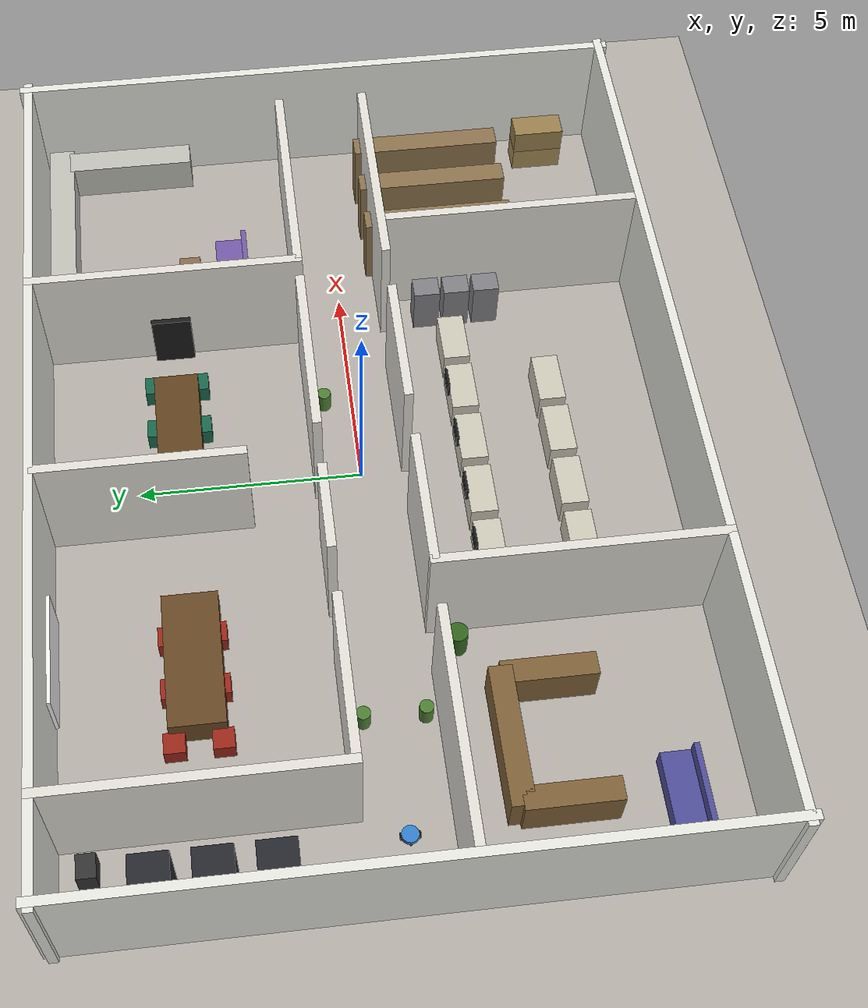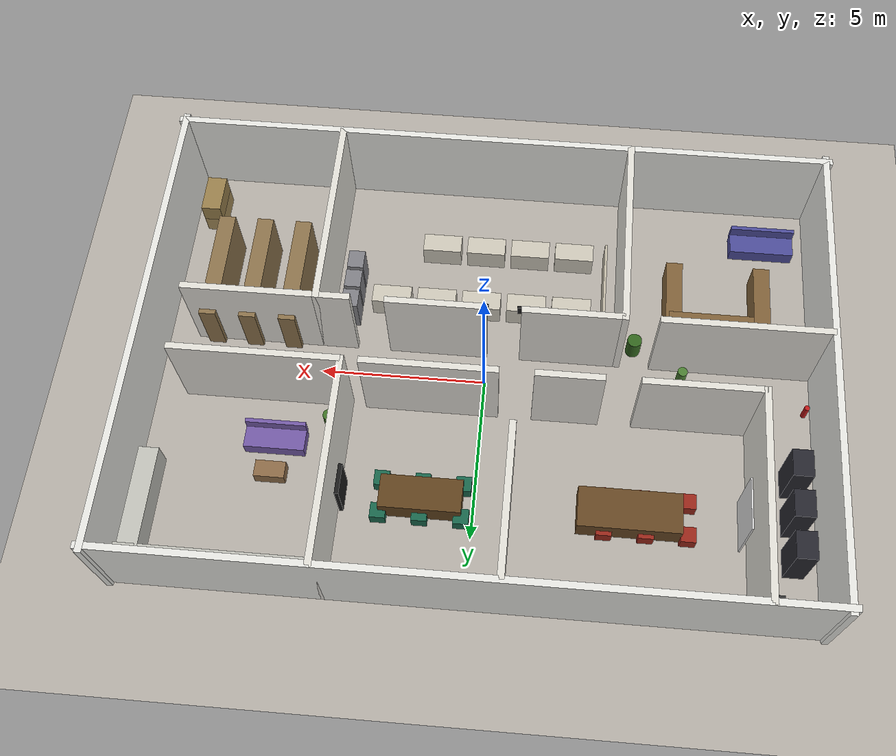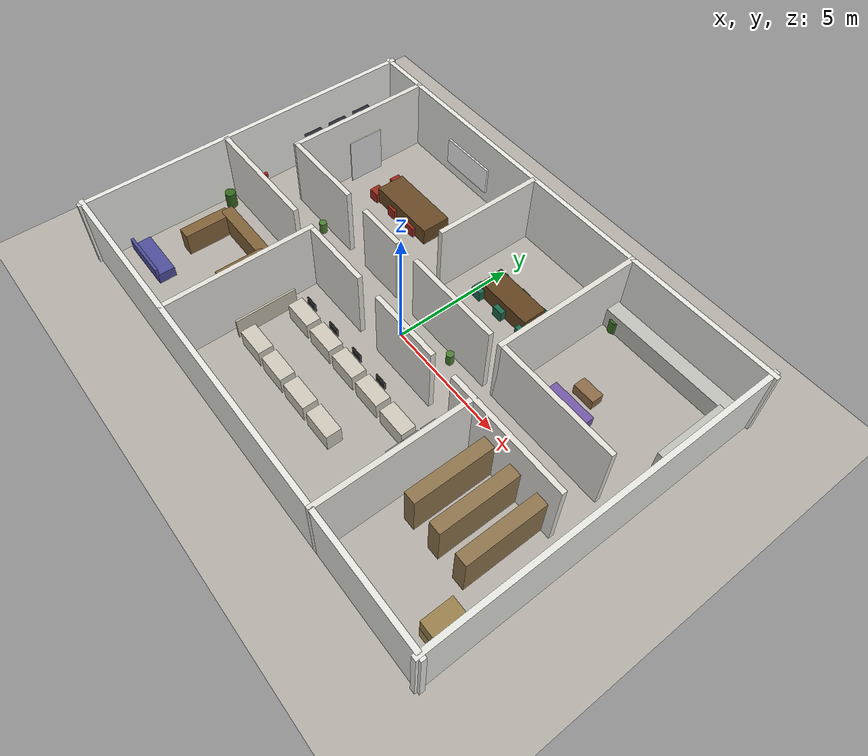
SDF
<?xml version="1.0" ?>
<sdf version="1.9">
  <world name="office">

    <physics name="1ms" type="ignored">
      <max_step_size>0.001</max_step_size>
      <real_time_factor>1.0</real_time_factor>
    </physics>

    <plugin filename="gz-sim-physics-system"           name="gz::sim::systems::Physics"/>
    <plugin filename="gz-sim-sensors-system"           name="gz::sim::systems::Sensors">
      <render_engine>ogre2</render_engine>
    </plugin>
    <plugin filename="gz-sim-user-commands-system"     name="gz::sim::systems::UserCommands"/>
    <plugin filename="gz-sim-scene-broadcaster-system" name="gz::sim::systems::SceneBroadcaster"/>

    <scene>
      <ambient>0.8 0.8 0.8 1.0</ambient>
      <background>0.2 0.2 0.25 1.0</background>
      <shadows>false</shadows>
    </scene>

    <!-- 조명: 복도 + 각 구역 -->
    <light name="sun" type="directional">
      <pose>0 0 10 0.3 0 0.5</pose>
      <diffuse>0.9 0.9 0.85 1</diffuse><specular>0.1 0.1 0.1 1</specular>
      <direction>-0.4 0.2 -1</direction><cast_shadows>false</cast_shadows>
    </light>
    <light name="l_corridor_w" type="point"><pose>-6.0  0.0 3.2 0 0 0</pose><diffuse>1.0 1.0 0.9 1</diffuse><specular>0.1 0.1 0.1 1</specular><attenuation><range>7</range><linear>0.12</linear></attenuation><cast_shadows>false</cast_shadows></light>
    <light name="l_corridor_e" type="point"><pose> 2.0  0.0 3.2 0 0 0</pose><diffuse>1.0 1.0 0.9 1</diffuse><specular>0.1 0.1 0.1 1</specular><attenuation><range>7</range><linear>0.12</linear></attenuation><cast_shadows>false</cast_shadows></light>
    <light name="l_lobby"      type="point"><pose>-7.5 -3.5 3.2 0 0 0</pose><diffuse>0.9 0.9 0.85 1</diffuse><specular>0.1 0.1 0.1 1</specular><attenuation><range>6</range><linear>0.15</linear></attenuation><cast_shadows>false</cast_shadows></light>
    <light name="l_open_ws"    type="point"><pose> 1.5 -3.5 3.2 0 0 0</pose><diffuse>0.9 0.9 0.85 1</diffuse><specular>0.1 0.1 0.1 1</specular><attenuation><range>8</range><linear>0.1</linear></attenuation><cast_shadows>false</cast_shadows></light>
    <light name="l_conf_a"     type="point"><pose>-4.5  4.0 3.2 0 0 0</pose><diffuse>0.9 0.9 0.85 1</diffuse><specular>0.1 0.1 0.1 1</specular><attenuation><range>5</range><linear>0.15</linear></attenuation><cast_shadows>false</cast_shadows></light>
    <light name="l_conf_b"     type="point"><pose> 1.5  4.0 3.2 0 0 0</pose><diffuse>0.9 0.9 0.85 1</diffuse><specular>0.1 0.1 0.1 1</specular><attenuation><range>5</range><linear>0.15</linear></attenuation><cast_shadows>false</cast_shadows></light>
    <light name="l_break"      type="point"><pose> 7.5  4.0 3.2 0 0 0</pose><diffuse>1.0 0.95 0.85 1</diffuse><specular>0.1 0.1 0.1 1</specular><attenuation><range>5</range><linear>0.15</linear></attenuation><cast_shadows>false</cast_shadows></light>

    <!-- ═══════════════════════════════════════
         바닥
         ═══════════════════════════════════════ -->
    <model name="floor"><static>true</static><link name="link">
      <collision name="col"><geometry><plane><normal>0 0 1</normal><size>200 200</size></plane></geometry></collision>
      <visual name="vis"><geometry><plane><normal>0 0 1</normal><size>200 200</size></plane></geometry>
        <material><ambient>0.70 0.68 0.65 1</ambient><diffuse>0.70 0.68 0.65 1</diffuse></material>
      </visual>
    </link></model>

    <!-- ═══════════════════════════════════════
         외벽 (20m × 14m, 두께 0.2m, 높이 3m)
         ═══════════════════════════════════════ -->
    <model name="wall_N"><static>true</static><pose>0  7 1.5 0 0 0</pose><link name="link">
      <collision name="c"><geometry><box><size>20.4 0.2 3.0</size></box></geometry></collision>
      <visual name="v"><geometry><box><size>20.4 0.2 3.0</size></box></geometry>
        <material><ambient>0.90 0.90 0.88 1</ambient><diffuse>0.90 0.90 0.88 1</diffuse></material></visual>
    </link></model>
    <model name="wall_S"><static>true</static><pose>0 -7 1.5 0 0 0</pose><link name="link">
      <collision name="c"><geometry><box><size>20.4 0.2 3.0</size></box></geometry></collision>
      <visual name="v"><geometry><box><size>20.4 0.2 3.0</size></box></geometry>
        <material><ambient>0.90 0.90 0.88 1</ambient><diffuse>0.90 0.90 0.88 1</diffuse></material></visual>
    </link></model>
    <model name="wall_W"><static>true</static><pose>-10 0 1.5 0 0 0</pose><link name="link">
      <collision name="c"><geometry><box><size>0.2 14.4 3.0</size></box></geometry></collision>
      <visual name="v"><geometry><box><size>0.2 14.4 3.0</size></box></geometry>
        <material><ambient>0.90 0.90 0.88 1</ambient><diffuse>0.90 0.90 0.88 1</diffuse></material></visual>
    </link></model>
    <model name="wall_E"><static>true</static><pose>10 0 1.5 0 0 0</pose><link name="link">
      <collision name="c"><geometry><box><size>0.2 14.4 3.0</size></box></geometry></collision>
      <visual name="v"><geometry><box><size>0.2 14.4 3.0</size></box></geometry>
        <material><ambient>0.90 0.90 0.88 1</ambient><diffuse>0.90 0.90 0.88 1</diffuse></material></visual>
    </link></model>

    <!-- ═══════════════════════════════════════
         내부 벽: 복도 (Y=+1 ~ Y=-1, 폭 2m)
         북쪽 복도벽 Y=+1, 남쪽 복도벽 Y=-1
         ═══════════════════════════════════════ -->

    <!-- 북쪽 복도벽 (문 3개: x=-8 [서버룸], x=-2 [회의A], x=4 [회의B]) -->
    <model name="ncw_seg1"><static>true</static><pose>-6.25 1.0 1.5 0 0 0</pose><link name="link">
      <collision name="c"><geometry><box><size>3.5 0.2 3.0</size></box></geometry></collision>
      <visual name="v"><geometry><box><size>3.5 0.2 3.0</size></box></geometry>
        <material><ambient>0.88 0.87 0.84 1</ambient><diffuse>0.88 0.87 0.84 1</diffuse></material></visual>
    </link></model>
    <model name="ncw_seg2"><static>true</static><pose>-2.5 1.0 1.5 0 0 0</pose><link name="link">
      <collision name="c"><geometry><box><size>2.0 0.2 3.0</size></box></geometry></collision>
      <visual name="v"><geometry><box><size>2.0 0.2 3.0</size></box></geometry>
        <material><ambient>0.88 0.87 0.84 1</ambient><diffuse>0.88 0.87 0.84 1</diffuse></material></visual>
    </link></model>
    <model name="ncw_seg3"><static>true</static><pose> 1.5 1.0 1.5 0 0 0</pose><link name="link">
      <collision name="c"><geometry><box><size>4.0 0.2 3.0</size></box></geometry></collision>
      <visual name="v"><geometry><box><size>4.0 0.2 3.0</size></box></geometry>
        <material><ambient>0.88 0.87 0.84 1</ambient><diffuse>0.88 0.87 0.84 1</diffuse></material></visual>
    </link></model>
    <model name="ncw_seg4"><static>true</static><pose> 6.5 1.0 1.5 0 0 0</pose><link name="link">
      <collision name="c"><geometry><box><size>5.0 0.2 3.0</size></box></geometry></collision>
      <visual name="v"><geometry><box><size>5.0 0.2 3.0</size></box></geometry>
        <material><ambient>0.88 0.87 0.84 1</ambient><diffuse>0.88 0.87 0.84 1</diffuse></material></visual>
    </link></model>

    <!-- 남쪽 복도벽 (문 2개: x=-3.5 [로비→복도], x=3.5 [오픈→복도]) -->
    <model name="scw_seg1"><static>true</static><pose>-7.5 -1.0 1.5 0 0 0</pose><link name="link">
      <collision name="c"><geometry><box><size>5.0 0.2 3.0</size></box></geometry></collision>
      <visual name="v"><geometry><box><size>5.0 0.2 3.0</size></box></geometry>
        <material><ambient>0.88 0.87 0.84 1</ambient><diffuse>0.88 0.87 0.84 1</diffuse></material></visual>
    </link></model>
    <model name="scw_seg2"><static>true</static><pose>-2.5 -1.0 1.5 0 0 0</pose><link name="link">
      <collision name="c"><geometry><box><size>3.0 0.2 3.0</size></box></geometry></collision>
      <visual name="v"><geometry><box><size>3.0 0.2 3.0</size></box></geometry>
        <material><ambient>0.88 0.87 0.84 1</ambient><diffuse>0.88 0.87 0.84 1</diffuse></material></visual>
    </link></model>
    <model name="scw_seg3"><static>true</static><pose> 1.5 -1.0 1.5 0 0 0</pose><link name="link">
      <collision name="c"><geometry><box><size>3.0 0.2 3.0</size></box></geometry></collision>
      <visual name="v"><geometry><box><size>3.0 0.2 3.0</size></box></geometry>
        <material><ambient>0.88 0.87 0.84 1</ambient><diffuse>0.88 0.87 0.84 1</diffuse></material></visual>
    </link></model>
    <model name="scw_seg4"><static>true</static><pose> 6.5 -1.0 1.5 0 0 0</pose><link name="link">
      <collision name="c"><geometry><box><size>5.0 0.2 3.0</size></box></geometry></collision>
      <visual name="v"><geometry><box><size>5.0 0.2 3.0</size></box></geometry>
        <material><ambient>0.88 0.87 0.84 1</ambient><diffuse>0.88 0.87 0.84 1</diffuse></material></visual>
    </link></model>

    <!-- 북쪽 방 구분벽 -->
    <!-- 서버룸 | 회의실A 구분: x=-8 -->
    <model name="ndiv_1"><static>true</static><pose>-8.0 4.0 1.5 0 0 0</pose><link name="link">
      <collision name="c"><geometry><box><size>0.2 6.2 3.0</size></box></geometry></collision>
      <visual name="v"><geometry><box><size>0.2 6.2 3.0</size></box></geometry>
        <material><ambient>0.88 0.87 0.84 1</ambient><diffuse>0.88 0.87 0.84 1</diffuse></material></visual>
    </link></model>
    <!-- 회의실A | 회의실B 구분: x=-1 -->
    <model name="ndiv_2a"><static>true</static><pose>-1.0 4.75 1.5 0 0 0</pose><link name="link">
      <collision name="c"><geometry><box><size>0.2 4.5 3.0</size></box></geometry></collision>
      <visual name="v"><geometry><box><size>0.2 4.5 3.0</size></box></geometry>
        <material><ambient>0.88 0.87 0.84 1</ambient><diffuse>0.88 0.87 0.84 1</diffuse></material></visual>
    </link></model>
    <!-- 회의실B | 휴게실 구분: x=4 -->
    <model name="ndiv_3"><static>true</static><pose>4.0 4.0 1.5 0 0 0</pose><link name="link">
      <collision name="c"><geometry><box><size>0.2 6.2 3.0</size></box></geometry></collision>
      <visual name="v"><geometry><box><size>0.2 6.2 3.0</size></box></geometry>
        <material><ambient>0.88 0.87 0.84 1</ambient><diffuse>0.88 0.87 0.84 1</diffuse></material></visual>
    </link></model>

    <!-- 남쪽 방 구분벽 -->
    <!-- 로비 | 오픈 구분: x=-4 -->
    <model name="sdiv_1"><static>true</static><pose>-4.0 -4.0 1.5 0 0 0</pose><link name="link">
      <collision name="c"><geometry><box><size>0.2 6.2 3.0</size></box></geometry></collision>
      <visual name="v"><geometry><box><size>0.2 6.2 3.0</size></box></geometry>
        <material><ambient>0.88 0.87 0.84 1</ambient><diffuse>0.88 0.87 0.84 1</diffuse></material></visual>
    </link></model>
    <!-- 오픈 | 창고 구분: x=5 -->
    <model name="sdiv_2"><static>true</static><pose>5.0 -4.0 1.5 0 0 0</pose><link name="link">
      <collision name="c"><geometry><box><size>0.2 6.2 3.0</size></box></geometry></collision>
      <visual name="v"><geometry><box><size>0.2 6.2 3.0</size></box></geometry>
        <material><ambient>0.88 0.87 0.84 1</ambient><diffuse>0.88 0.87 0.84 1</diffuse></material></visual>
    </link></model>

    <!-- ═══════════════════════════════════════
         [서버룸] x: -10~-8, y: 1~7
         ═══════════════════════════════════════ -->
    <!-- 서버랙 3개 (높이 1.8m → 라이다에 잘 보임) -->
    <model name="srv_rack1"><static>true</static><pose>-9.2 5.0 0.9 0 0 0</pose><link name="link">
      <collision name="c"><geometry><box><size>0.6 0.8 1.8</size></box></geometry></collision>
      <visual name="v"><geometry><box><size>0.6 0.8 1.8</size></box></geometry>
        <material><ambient>0.15 0.15 0.18 1</ambient><diffuse>0.15 0.15 0.18 1</diffuse></material></visual>
    </link></model>
    <model name="srv_rack2"><static>true</static><pose>-9.2 3.8 0.9 0 0 0</pose><link name="link">
      <collision name="c"><geometry><box><size>0.6 0.8 1.8</size></box></geometry></collision>
      <visual name="v"><geometry><box><size>0.6 0.8 1.8</size></box></geometry>
        <material><ambient>0.15 0.15 0.18 1</ambient><diffuse>0.15 0.15 0.18 1</diffuse></material></visual>
    </link></model>
    <model name="srv_rack3"><static>true</static><pose>-9.2 2.6 0.9 0 0 0</pose><link name="link">
      <collision name="c"><geometry><box><size>0.6 0.8 1.8</size></box></geometry></collision>
      <visual name="v"><geometry><box><size>0.6 0.8 1.8</size></box></geometry>
        <material><ambient>0.15 0.15 0.18 1</ambient><diffuse>0.15 0.15 0.18 1</diffuse></material></visual>
    </link></model>
    <!-- UPS 박스 -->
    <model name="srv_ups"><static>true</static><pose>-8.6 6.3 0.3 0 0 0</pose><link name="link">
      <collision name="c"><geometry><box><size>0.5 0.4 0.6</size></box></geometry></collision>
      <visual name="v"><geometry><box><size>0.5 0.4 0.6</size></box></geometry>
        <material><ambient>0.2 0.2 0.2 1</ambient><diffuse>0.2 0.2 0.2 1</diffuse></material></visual>
    </link></model>

    <!-- ═══════════════════════════════════════
         [회의실A] x: -8~-1, y: 1~7
         ═══════════════════════════════════════ -->
    <!-- 대형 회의 테이블 (3m × 1.2m) -->
    <model name="conf_a_table"><static>true</static><pose>-4.5 4.0 0.38 0 0 0</pose><link name="link">
      <collision name="c"><geometry><box><size>3.0 1.2 0.75</size></box></geometry></collision>
      <visual name="v"><geometry><box><size>3.0 1.2 0.75</size></box></geometry>
        <material><ambient>0.40 0.28 0.14 1</ambient><diffuse>0.40 0.28 0.14 1</diffuse></material></visual>
    </link></model>
    <!-- 테이블 다리 4개 (라이다 높이에서 보임) -->
    <model name="conf_a_leg_fl"><static>true</static><pose>-5.8 4.5 0.35 0 0 0</pose><link name="link">
      <collision name="c"><geometry><cylinder><radius>0.04</radius><length>0.70</length></cylinder></geometry></collision>
      <visual name="v"><geometry><cylinder><radius>0.04</radius><length>0.70</length></cylinder></geometry>
        <material><ambient>0.25 0.18 0.08 1</ambient><diffuse>0.25 0.18 0.08 1</diffuse></material></visual>
    </link></model>
    <model name="conf_a_leg_fr"><static>true</static><pose>-5.8 3.5 0.35 0 0 0</pose><link name="link">
      <collision name="c"><geometry><cylinder><radius>0.04</radius><length>0.70</length></cylinder></geometry></collision>
      <visual name="v"><geometry><cylinder><radius>0.04</radius><length>0.70</length></cylinder></geometry>
        <material><ambient>0.25 0.18 0.08 1</ambient><diffuse>0.25 0.18 0.08 1</diffuse></material></visual>
    </link></model>
    <model name="conf_a_leg_rl"><static>true</static><pose>-3.2 4.5 0.35 0 0 0</pose><link name="link">
      <collision name="c"><geometry><cylinder><radius>0.04</radius><length>0.70</length></cylinder></geometry></collision>
      <visual name="v"><geometry><cylinder><radius>0.04</radius><length>0.70</length></cylinder></geometry>
        <material><ambient>0.25 0.18 0.08 1</ambient><diffuse>0.25 0.18 0.08 1</diffuse></material></visual>
    </link></model>
    <model name="conf_a_leg_rr"><static>true</static><pose>-3.2 3.5 0.35 0 0 0</pose><link name="link">
      <collision name="c"><geometry><cylinder><radius>0.04</radius><length>0.70</length></cylinder></geometry></collision>
      <visual name="v"><geometry><cylinder><radius>0.04</radius><length>0.70</length></cylinder></geometry>
        <material><ambient>0.25 0.18 0.08 1</ambient><diffuse>0.25 0.18 0.08 1</diffuse></material></visual>
    </link></model>
    <!-- 의자 6개 (좌석판만: 0.45×0.45×0.45) -->
    <model name="conf_a_chair1"><static>true</static><pose>-6.2 4.5 0.22 0 0 0</pose><link name="link"><collision name="c"><geometry><box><size>0.45 0.45 0.45</size></box></geometry></collision><visual name="v"><geometry><box><size>0.45 0.45 0.45</size></box></geometry><material><ambient>0.6 0.15 0.1 1</ambient><diffuse>0.6 0.15 0.1 1</diffuse></material></visual></link></model>
    <model name="conf_a_chair2"><static>true</static><pose>-5.0 4.5 0.22 0 0 0</pose><link name="link"><collision name="c"><geometry><box><size>0.45 0.45 0.45</size></box></geometry></collision><visual name="v"><geometry><box><size>0.45 0.45 0.45</size></box></geometry><material><ambient>0.6 0.15 0.1 1</ambient><diffuse>0.6 0.15 0.1 1</diffuse></material></visual></link></model>
    <model name="conf_a_chair3"><static>true</static><pose>-3.8 4.5 0.22 0 0 0</pose><link name="link"><collision name="c"><geometry><box><size>0.45 0.45 0.45</size></box></geometry></collision><visual name="v"><geometry><box><size>0.45 0.45 0.45</size></box></geometry><material><ambient>0.6 0.15 0.1 1</ambient><diffuse>0.6 0.15 0.1 1</diffuse></material></visual></link></model>
    <model name="conf_a_chair4"><static>true</static><pose>-6.2 3.5 0.22 0 0 0</pose><link name="link"><collision name="c"><geometry><box><size>0.45 0.45 0.45</size></box></geometry></collision><visual name="v"><geometry><box><size>0.45 0.45 0.45</size></box></geometry><material><ambient>0.6 0.15 0.1 1</ambient><diffuse>0.6 0.15 0.1 1</diffuse></material></visual></link></model>
    <model name="conf_a_chair5"><static>true</static><pose>-5.0 3.5 0.22 0 0 0</pose><link name="link"><collision name="c"><geometry><box><size>0.45 0.45 0.45</size></box></geometry></collision><visual name="v"><geometry><box><size>0.45 0.45 0.45</size></box></geometry><material><ambient>0.6 0.15 0.1 1</ambient><diffuse>0.6 0.15 0.1 1</diffuse></material></visual></link></model>
    <model name="conf_a_chair6"><static>true</static><pose>-3.8 3.5 0.22 0 0 0</pose><link name="link"><collision name="c"><geometry><box><size>0.45 0.45 0.45</size></box></geometry></collision><visual name="v"><geometry><box><size>0.45 0.45 0.45</size></box></geometry><material><ambient>0.6 0.15 0.1 1</ambient><diffuse>0.6 0.15 0.1 1</diffuse></material></visual></link></model>
    <!-- 화이트보드 (벽에 기댐) -->
    <model name="conf_a_wb"><static>true</static><pose>-4.5 6.8 1.2 0 0 0</pose><link name="link">
      <collision name="c"><geometry><box><size>2.4 0.08 1.2</size></box></geometry></collision>
      <visual name="v"><geometry><box><size>2.4 0.08 1.2</size></box></geometry>
        <material><ambient>0.95 0.95 0.95 1</ambient><diffuse>0.95 0.95 0.95 1</diffuse></material></visual>
    </link></model>
    <!-- 빔프로젝터 스크린 스탠드 -->
    <model name="conf_a_screen"><static>true</static><pose>-7.7 4.0 1.0 0 0 0</pose><link name="link">
      <collision name="c"><geometry><box><size>0.05 1.5 2.0</size></box></geometry></collision>
      <visual name="v"><geometry><box><size>0.05 1.5 2.0</size></box></geometry>
        <material><ambient>0.85 0.85 0.85 1</ambient><diffuse>0.85 0.85 0.85 1</diffuse></material></visual>
    </link></model>

    <!-- ═══════════════════════════════════════
         [회의실B] x: -1~4, y: 1~7
         ═══════════════════════════════════════ -->
    <model name="conf_b_table"><static>true</static><pose>1.5 4.0 0.38 0 0 0</pose><link name="link">
      <collision name="c"><geometry><box><size>2.4 1.0 0.75</size></box></geometry></collision>
      <visual name="v"><geometry><box><size>2.4 1.0 0.75</size></box></geometry>
        <material><ambient>0.38 0.26 0.12 1</ambient><diffuse>0.38 0.26 0.12 1</diffuse></material></visual>
    </link></model>
    <model name="conf_b_chair1"><static>true</static><pose>0.3 4.5 0.22 0 0 0</pose><link name="link"><collision name="c"><geometry><box><size>0.45 0.45 0.45</size></box></geometry></collision><visual name="v"><geometry><box><size>0.45 0.45 0.45</size></box></geometry><material><ambient>0.1 0.4 0.3 1</ambient><diffuse>0.1 0.4 0.3 1</diffuse></material></visual></link></model>
    <model name="conf_b_chair2"><static>true</static><pose>1.5 4.5 0.22 0 0 0</pose><link name="link"><collision name="c"><geometry><box><size>0.45 0.45 0.45</size></box></geometry></collision><visual name="v"><geometry><box><size>0.45 0.45 0.45</size></box></geometry><material><ambient>0.1 0.4 0.3 1</ambient><diffuse>0.1 0.4 0.3 1</diffuse></material></visual></link></model>
    <model name="conf_b_chair3"><static>true</static><pose>2.7 4.5 0.22 0 0 0</pose><link name="link"><collision name="c"><geometry><box><size>0.45 0.45 0.45</size></box></geometry></collision><visual name="v"><geometry><box><size>0.45 0.45 0.45</size></box></geometry><material><ambient>0.1 0.4 0.3 1</ambient><diffuse>0.1 0.4 0.3 1</diffuse></material></visual></link></model>
    <model name="conf_b_chair4"><static>true</static><pose>0.3 3.5 0.22 0 0 0</pose><link name="link"><collision name="c"><geometry><box><size>0.45 0.45 0.45</size></box></geometry></collision><visual name="v"><geometry><box><size>0.45 0.45 0.45</size></box></geometry><material><ambient>0.1 0.4 0.3 1</ambient><diffuse>0.1 0.4 0.3 1</diffuse></material></visual></link></model>
    <model name="conf_b_chair5"><static>true</static><pose>1.5 3.5 0.22 0 0 0</pose><link name="link"><collision name="c"><geometry><box><size>0.45 0.45 0.45</size></box></geometry></collision><visual name="v"><geometry><box><size>0.45 0.45 0.45</size></box></geometry><material><ambient>0.1 0.4 0.3 1</ambient><diffuse>0.1 0.4 0.3 1</diffuse></material></visual></link></model>
    <model name="conf_b_chair6"><static>true</static><pose>2.7 3.5 0.22 0 0 0</pose><link name="link"><collision name="c"><geometry><box><size>0.45 0.45 0.45</size></box></geometry></collision><visual name="v"><geometry><box><size>0.45 0.45 0.45</size></box></geometry><material><ambient>0.1 0.4 0.3 1</ambient><diffuse>0.1 0.4 0.3 1</diffuse></material></visual></link></model>
    <!-- TV 스탠드 -->
    <model name="conf_b_tv"><static>true</static><pose>3.8 4.0 0.7 0 0 0</pose><link name="link">
      <collision name="c"><geometry><box><size>0.12 0.9 1.4</size></box></geometry></collision>
      <visual name="v"><geometry><box><size>0.12 0.9 1.4</size></box></geometry>
        <material><ambient>0.1 0.1 0.1 1</ambient><diffuse>0.1 0.1 0.1 1</diffuse></material></visual>
    </link></model>

    <!-- ═══════════════════════════════════════
         [휴게실/주방] x: 4~10, y: 1~7
         ═══════════════════════════════════════ -->
    <!-- 주방 카운터 (ㄱ자) -->
    <model name="kitchen_ctr_long"><static>true</static><pose>7.0 6.5 0.45 0 0 0</pose><link name="link">
      <collision name="c"><geometry><box><size>6.0 0.6 0.9</size></box></geometry></collision>
      <visual name="v"><geometry><box><size>6.0 0.6 0.9</size></box></geometry>
        <material><ambient>0.75 0.75 0.72 1</ambient><diffuse>0.75 0.75 0.72 1</diffuse></material></visual>
    </link></model>
    <model name="kitchen_ctr_side"><static>true</static><pose>9.5 4.8 0.45 0 0 0</pose><link name="link">
      <collision name="c"><geometry><box><size>0.6 3.0 0.9</size></box></geometry></collision>
      <visual name="v"><geometry><box><size>0.6 3.0 0.9</size></box></geometry>
        <material><ambient>0.75 0.75 0.72 1</ambient><diffuse>0.75 0.75 0.72 1</diffuse></material></visual>
    </link></model>
    <!-- 소파 (2인용) -->
    <model name="sofa"><static>true</static><pose>6.0 2.5 0.22 0 0 0</pose><link name="link">
      <collision name="c"><geometry><box><size>1.8 0.7 0.45</size></box></geometry></collision>
      <visual name="v"><geometry><box><size>1.8 0.7 0.45</size></box></geometry>
        <material><ambient>0.45 0.35 0.65 1</ambient><diffuse>0.45 0.35 0.65 1</diffuse></material></visual>
    </link></model>
    <!-- 소파 등받이 -->
    <model name="sofa_back"><static>true</static><pose>6.0 2.15 0.50 0 0 0</pose><link name="link">
      <collision name="c"><geometry><box><size>1.8 0.12 0.55</size></box></geometry></collision>
      <visual name="v"><geometry><box><size>1.8 0.12 0.55</size></box></geometry>
        <material><ambient>0.45 0.35 0.65 1</ambient><diffuse>0.45 0.35 0.65 1</diffuse></material></visual>
    </link></model>
    <!-- 커피 테이블 -->
    <model name="coffee_table"><static>true</static><pose>6.0 3.5 0.22 0 0 0</pose><link name="link">
      <collision name="c"><geometry><box><size>0.9 0.5 0.45</size></box></geometry></collision>
      <visual name="v"><geometry><box><size>0.9 0.5 0.45</size></box></geometry>
        <material><ambient>0.55 0.42 0.28 1</ambient><diffuse>0.55 0.42 0.28 1</diffuse></material></visual>
    </link></model>
    <!-- 화분 (원통, 큰 것) -->
    <model name="plant_break1"><static>true</static><pose>4.5 6.3 0.3 0 0 0</pose><link name="link">
      <collision name="c"><geometry><cylinder><radius>0.2</radius><length>0.6</length></cylinder></geometry></collision>
      <visual name="v"><geometry><cylinder><radius>0.2</radius><length>0.6</length></cylinder></geometry>
        <material><ambient>0.25 0.45 0.15 1</ambient><diffuse>0.25 0.45 0.15 1</diffuse></material></visual>
    </link></model>
    <model name="plant_break2"><static>true</static><pose>4.5 1.7 0.3 0 0 0</pose><link name="link">
      <collision name="c"><geometry><cylinder><radius>0.18</radius><length>0.55</length></cylinder></geometry></collision>
      <visual name="v"><geometry><cylinder><radius>0.18</radius><length>0.55</length></cylinder></geometry>
        <material><ambient>0.25 0.45 0.15 1</ambient><diffuse>0.25 0.45 0.15 1</diffuse></material></visual>
    </link></model>

    <!-- ═══════════════════════════════════════
         [로비/리셉션] x: -10~-4, y: -7~-1
         ═══════════════════════════════════════ -->
    <!-- 리셉션 데스크 (ㄷ자형: 앞면 + 양쪽) -->
    <model name="rec_front"><static>true</static><pose>-7.0 -2.2 0.5 0 0 0</pose><link name="link">
      <collision name="c"><geometry><box><size>3.0 0.5 1.0</size></box></geometry></collision>
      <visual name="v"><geometry><box><size>3.0 0.5 1.0</size></box></geometry>
        <material><ambient>0.50 0.38 0.22 1</ambient><diffuse>0.50 0.38 0.22 1</diffuse></material></visual>
    </link></model>
    <model name="rec_left"><static>true</static><pose>-8.35 -3.2 0.5 0 0 0</pose><link name="link">
      <collision name="c"><geometry><box><size>0.5 2.0 1.0</size></box></geometry></collision>
      <visual name="v"><geometry><box><size>0.5 2.0 1.0</size></box></geometry>
        <material><ambient>0.50 0.38 0.22 1</ambient><diffuse>0.50 0.38 0.22 1</diffuse></material></visual>
    </link></model>
    <model name="rec_right"><static>true</static><pose>-5.65 -3.2 0.5 0 0 0</pose><link name="link">
      <collision name="c"><geometry><box><size>0.5 2.0 1.0</size></box></geometry></collision>
      <visual name="v"><geometry><box><size>0.5 2.0 1.0</size></box></geometry>
        <material><ambient>0.50 0.38 0.22 1</ambient><diffuse>0.50 0.38 0.22 1</diffuse></material></visual>
    </link></model>
    <!-- 대기 소파 -->
    <model name="lobby_sofa"><static>true</static><pose>-8.5 -5.5 0.22 0 0 0</pose><link name="link">
      <collision name="c"><geometry><box><size>2.0 0.7 0.45</size></box></geometry></collision>
      <visual name="v"><geometry><box><size>2.0 0.7 0.45</size></box></geometry>
        <material><ambient>0.3 0.3 0.6 1</ambient><diffuse>0.3 0.3 0.6 1</diffuse></material></visual>
    </link></model>
    <model name="lobby_sofa_back"><static>true</static><pose>-8.5 -5.85 0.50 0 0 0</pose><link name="link">
      <collision name="c"><geometry><box><size>2.0 0.12 0.55</size></box></geometry></collision>
      <visual name="v"><geometry><box><size>2.0 0.12 0.55</size></box></geometry>
        <material><ambient>0.3 0.3 0.6 1</ambient><diffuse>0.3 0.3 0.6 1</diffuse></material></visual>
    </link></model>
    <!-- 로비 화분 (입구 쪽) -->
    <model name="plant_lobby1"><static>true</static><pose>-9.5 -1.5 0.35 0 0 0</pose><link name="link">
      <collision name="c"><geometry><cylinder><radius>0.22</radius><length>0.70</length></cylinder></geometry></collision>
      <visual name="v"><geometry><cylinder><radius>0.22</radius><length>0.70</length></cylinder></geometry>
        <material><ambient>0.2 0.4 0.12 1</ambient><diffuse>0.2 0.4 0.12 1</diffuse></material></visual>
    </link></model>
    <model name="plant_lobby2"><static>true</static><pose>-4.5 -1.5 0.35 0 0 0</pose><link name="link">
      <collision name="c"><geometry><cylinder><radius>0.22</radius><length>0.70</length></cylinder></geometry></collision>
      <visual name="v"><geometry><cylinder><radius>0.22</radius><length>0.70</length></cylinder></geometry>
        <material><ambient>0.2 0.4 0.12 1</ambient><diffuse>0.2 0.4 0.12 1</diffuse></material></visual>
    </link></model>

    <!-- ═══════════════════════════════════════
         [오픈 워크스페이스] x: -4~5, y: -7~-1
         ═══════════════════════════════════════ -->
    <!-- 워크스테이션 열 1 (y=-2.5) -->
    <model name="ws_desk_1a"><static>true</static><pose>-2.5 -2.5 0.38 0 0 0</pose><link name="link"><collision name="c"><geometry><box><size>1.2 0.6 0.75</size></box></geometry></collision><visual name="v"><geometry><box><size>1.2 0.6 0.75</size></box></geometry><material><ambient>0.80 0.78 0.72 1</ambient><diffuse>0.80 0.78 0.72 1</diffuse></material></visual></link></model>
    <model name="ws_desk_1b"><static>true</static><pose>-1.1 -2.5 0.38 0 0 0</pose><link name="link"><collision name="c"><geometry><box><size>1.2 0.6 0.75</size></box></geometry></collision><visual name="v"><geometry><box><size>1.2 0.6 0.75</size></box></geometry><material><ambient>0.80 0.78 0.72 1</ambient><diffuse>0.80 0.78 0.72 1</diffuse></material></visual></link></model>
    <model name="ws_desk_1c"><static>true</static><pose> 0.3 -2.5 0.38 0 0 0</pose><link name="link"><collision name="c"><geometry><box><size>1.2 0.6 0.75</size></box></geometry></collision><visual name="v"><geometry><box><size>1.2 0.6 0.75</size></box></geometry><material><ambient>0.80 0.78 0.72 1</ambient><diffuse>0.80 0.78 0.72 1</diffuse></material></visual></link></model>
    <model name="ws_desk_1d"><static>true</static><pose> 1.7 -2.5 0.38 0 0 0</pose><link name="link"><collision name="c"><geometry><box><size>1.2 0.6 0.75</size></box></geometry></collision><visual name="v"><geometry><box><size>1.2 0.6 0.75</size></box></geometry><material><ambient>0.80 0.78 0.72 1</ambient><diffuse>0.80 0.78 0.72 1</diffuse></material></visual></link></model>
    <model name="ws_desk_1e"><static>true</static><pose> 3.1 -2.5 0.38 0 0 0</pose><link name="link"><collision name="c"><geometry><box><size>1.2 0.6 0.75</size></box></geometry></collision><visual name="v"><geometry><box><size>1.2 0.6 0.75</size></box></geometry><material><ambient>0.80 0.78 0.72 1</ambient><diffuse>0.80 0.78 0.72 1</diffuse></material></visual></link></model>

    <!-- 워크스테이션 열 2 (y=-4.5, 반대 방향) -->
    <model name="ws_desk_2a"><static>true</static><pose>-2.5 -4.5 0.38 0 0 0</pose><link name="link"><collision name="c"><geometry><box><size>1.2 0.6 0.75</size></box></geometry></collision><visual name="v"><geometry><box><size>1.2 0.6 0.75</size></box></geometry><material><ambient>0.80 0.78 0.72 1</ambient><diffuse>0.80 0.78 0.72 1</diffuse></material></visual></link></model>
    <model name="ws_desk_2b"><static>true</static><pose>-1.1 -4.5 0.38 0 0 0</pose><link name="link"><collision name="c"><geometry><box><size>1.2 0.6 0.75</size></box></geometry></collision><visual name="v"><geometry><box><size>1.2 0.6 0.75</size></box></geometry><material><ambient>0.80 0.78 0.72 1</ambient><diffuse>0.80 0.78 0.72 1</diffuse></material></visual></link></model>
    <model name="ws_desk_2c"><static>true</static><pose> 0.3 -4.5 0.38 0 0 0</pose><link name="link"><collision name="c"><geometry><box><size>1.2 0.6 0.75</size></box></geometry></collision><visual name="v"><geometry><box><size>1.2 0.6 0.75</size></box></geometry><material><ambient>0.80 0.78 0.72 1</ambient><diffuse>0.80 0.78 0.72 1</diffuse></material></visual></link></model>
    <model name="ws_desk_2d"><static>true</static><pose> 1.7 -4.5 0.38 0 0 0</pose><link name="link"><collision name="c"><geometry><box><size>1.2 0.6 0.75</size></box></geometry></collision><visual name="v"><geometry><box><size>1.2 0.6 0.75</size></box></geometry><material><ambient>0.80 0.78 0.72 1</ambient><diffuse>0.80 0.78 0.72 1</diffuse></material></visual></link></model>

    <!-- 각 책상 위 모니터 (라이다 높이에서 막힘) -->
    <model name="mon_1a"><static>true</static><pose>-2.5 -2.15 0.92 0 0 0</pose><link name="link"><collision name="c"><geometry><box><size>0.5 0.06 0.35</size></box></geometry></collision><visual name="v"><geometry><box><size>0.5 0.06 0.35</size></box></geometry><material><ambient>0.1 0.1 0.1 1</ambient><diffuse>0.1 0.1 0.1 1</diffuse></material></visual></link></model>
    <model name="mon_1b"><static>true</static><pose>-1.1 -2.15 0.92 0 0 0</pose><link name="link"><collision name="c"><geometry><box><size>0.5 0.06 0.35</size></box></geometry></collision><visual name="v"><geometry><box><size>0.5 0.06 0.35</size></box></geometry><material><ambient>0.1 0.1 0.1 1</ambient><diffuse>0.1 0.1 0.1 1</diffuse></material></visual></link></model>
    <model name="mon_1c"><static>true</static><pose> 0.3 -2.15 0.92 0 0 0</pose><link name="link"><collision name="c"><geometry><box><size>0.5 0.06 0.35</size></box></geometry></collision><visual name="v"><geometry><box><size>0.5 0.06 0.35</size></box></geometry><material><ambient>0.1 0.1 0.1 1</ambient><diffuse>0.1 0.1 0.1 1</diffuse></material></visual></link></model>
    <model name="mon_1d"><static>true</static><pose> 1.7 -2.15 0.92 0 0 0</pose><link name="link"><collision name="c"><geometry><box><size>0.5 0.06 0.35</size></box></geometry></collision><visual name="v"><geometry><box><size>0.5 0.06 0.35</size></box></geometry><material><ambient>0.1 0.1 0.1 1</ambient><diffuse>0.1 0.1 0.1 1</diffuse></material></visual></link></model>

    <!-- 파일링 캐비닛 (높이 1.2m) 열 -->
    <model name="cab1"><static>true</static><pose>4.3 -2.0 0.6 0 0 0</pose><link name="link"><collision name="c"><geometry><box><size>0.5 0.6 1.2</size></box></geometry></collision><visual name="v"><geometry><box><size>0.5 0.6 1.2</size></box></geometry><material><ambient>0.5 0.5 0.52 1</ambient><diffuse>0.5 0.5 0.52 1</diffuse></material></visual></link></model>
    <model name="cab2"><static>true</static><pose>4.3 -2.7 0.6 0 0 0</pose><link name="link"><collision name="c"><geometry><box><size>0.5 0.6 1.2</size></box></geometry></collision><visual name="v"><geometry><box><size>0.5 0.6 1.2</size></box></geometry><material><ambient>0.5 0.5 0.52 1</ambient><diffuse>0.5 0.5 0.52 1</diffuse></material></visual></link></model>
    <model name="cab3"><static>true</static><pose>4.3 -3.4 0.6 0 0 0</pose><link name="link"><collision name="c"><geometry><box><size>0.5 0.6 1.2</size></box></geometry></collision><visual name="v"><geometry><box><size>0.5 0.6 1.2</size></box></geometry><material><ambient>0.5 0.5 0.52 1</ambient><diffuse>0.5 0.5 0.52 1</diffuse></material></visual></link></model>
    <!-- 복도 쪽 파티션 (라이다 높이 0.9m) -->
    <model name="partition1"><static>true</static><pose>-3.5 -3.5 0.45 0 0 0</pose><link name="link"><collision name="c"><geometry><box><size>0.08 2.5 0.9</size></box></geometry></collision><visual name="v"><geometry><box><size>0.08 2.5 0.9</size></box></geometry><material><ambient>0.75 0.72 0.65 1</ambient><diffuse>0.75 0.72 0.65 1</diffuse></material></visual></link></model>

    <!-- ═══════════════════════════════════════
         [창고] x: 5~10, y: -7~-1
         ═══════════════════════════════════════ -->
    <!-- 선반 3열 (높이 1.8m) -->
    <model name="shelf_1"><static>true</static><pose>6.0 -2.5 0.9 0 0 0</pose><link name="link">
      <collision name="c"><geometry><box><size>0.5 3.5 1.8</size></box></geometry></collision>
      <visual name="v"><geometry><box><size>0.5 3.5 1.8</size></box></geometry>
        <material><ambient>0.55 0.45 0.3 1</ambient><diffuse>0.55 0.45 0.3 1</diffuse></material></visual>
    </link></model>
    <model name="shelf_2"><static>true</static><pose>7.2 -2.5 0.9 0 0 0</pose><link name="link">
      <collision name="c"><geometry><box><size>0.5 3.5 1.8</size></box></geometry></collision>
      <visual name="v"><geometry><box><size>0.5 3.5 1.8</size></box></geometry>
        <material><ambient>0.55 0.45 0.3 1</ambient><diffuse>0.55 0.45 0.3 1</diffuse></material></visual>
    </link></model>
    <model name="shelf_3"><static>true</static><pose>8.4 -2.5 0.9 0 0 0</pose><link name="link">
      <collision name="c"><geometry><box><size>0.5 3.5 1.8</size></box></geometry></collision>
      <visual name="v"><geometry><box><size>0.5 3.5 1.8</size></box></geometry>
        <material><ambient>0.55 0.45 0.3 1</ambient><diffuse>0.55 0.45 0.3 1</diffuse></material></visual>
    </link></model>
    <!-- 박스 더미 -->
    <model name="box_pile1"><static>true</static><pose>9.2 -5.5 0.3 0 0 0</pose><link name="link"><collision name="c"><geometry><box><size>0.6 1.2 0.6</size></box></geometry></collision><visual name="v"><geometry><box><size>0.6 1.2 0.6</size></box></geometry><material><ambient>0.65 0.55 0.35 1</ambient><diffuse>0.65 0.55 0.35 1</diffuse></material></visual></link></model>
    <model name="box_pile2"><static>true</static><pose>9.2 -5.5 0.9 0 0 0</pose><link name="link"><collision name="c"><geometry><box><size>0.6 1.2 0.6</size></box></geometry></collision><visual name="v"><geometry><box><size>0.6 1.2 0.6</size></box></geometry><material><ambient>0.60 0.50 0.30 1</ambient><diffuse>0.60 0.50 0.30 1</diffuse></material></visual></link></model>

    <!-- ═══════════════════════════════════════
         복도 소품
         ═══════════════════════════════════════ -->
    <!-- 복도 화분 -->
    <model name="plant_cor1"><static>true</static><pose>-6.0  0.65 0.25 0 0 0</pose><link name="link"><collision name="c"><geometry><cylinder><radius>0.15</radius><length>0.5</length></cylinder></geometry></collision><visual name="v"><geometry><cylinder><radius>0.15</radius><length>0.5</length></cylinder></geometry><material><ambient>0.3 0.5 0.2 1</ambient><diffuse>0.3 0.5 0.2 1</diffuse></material></visual></link></model>
    <model name="plant_cor2"><static>true</static><pose>-6.0 -0.65 0.25 0 0 0</pose><link name="link"><collision name="c"><geometry><cylinder><radius>0.15</radius><length>0.5</length></cylinder></geometry></collision><visual name="v"><geometry><cylinder><radius>0.15</radius><length>0.5</length></cylinder></geometry><material><ambient>0.3 0.5 0.2 1</ambient><diffuse>0.3 0.5 0.2 1</diffuse></material></visual></link></model>
    <model name="plant_cor3"><static>true</static><pose> 2.0  0.65 0.25 0 0 0</pose><link name="link"><collision name="c"><geometry><cylinder><radius>0.15</radius><length>0.5</length></cylinder></geometry></collision><visual name="v"><geometry><cylinder><radius>0.15</radius><length>0.5</length></cylinder></geometry><material><ambient>0.3 0.5 0.2 1</ambient><diffuse>0.3 0.5 0.2 1</diffuse></material></visual></link></model>
    <!-- 소화기 -->
    <model name="extinguisher"><static>true</static><pose>-9.7 0.3 0.3 0 0 0</pose><link name="link"><collision name="c"><geometry><cylinder><radius>0.08</radius><length>0.55</length></cylinder></geometry></collision><visual name="v"><geometry><cylinder><radius>0.08</radius><length>0.55</length></cylinder></geometry><material><ambient>0.75 0.1 0.1 1</ambient><diffuse>0.75 0.1 0.1 1</diffuse></material></visual></link></model>

    <include>
      <uri>model://robot</uri>
      <pose>-8.5 0.0 0.08 0 0 0</pose>
    </include>

  </world>
</sdf>

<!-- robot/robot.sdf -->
<sdf version="1.9">

  <model name="robot">

    <!-- 본체 -->
    <link name="base_link">
      <inertial>
        <mass>8.0</mass>
        <inertia>
          <ixx>0.2</ixx><ixy>0</ixy><ixz>0</ixz>
          <iyy>0.2</iyy><iyz>0</iyz><izz>0.3</izz>
        </inertia>
      </inertial>

      <collision name="col">
        <geometry>
          <cylinder>
            <radius>0.18</radius>
            <length>0.12</length>
          </cylinder>
        </geometry>
      </collision>

      <visual name="vis">
        <geometry>
          <cylinder>
            <radius>0.18</radius>
            <length>0.12</length>
          </cylinder>
        </geometry>
        <material>
          <ambient>0.2 0.5 0.8 1</ambient>
          <diffuse>0.2 0.5 0.8 1</diffuse>
        </material>
      </visual>

      <!-- 2D LiDAR -->
      <sensor name="lidar" type="gpu_lidar">
        <pose>0 0 0.1 0 0 0</pose>
        <topic>/scan</topic>
        <gz_frame_id>base_link</gz_frame_id>
        <update_rate>20</update_rate>
        <always_on>true</always_on>
        <lidar>
          <scan>
            <horizontal>
              <samples>720</samples>
              <resolution>1</resolution>
              <min_angle>-3.14159</min_angle>
              <max_angle>3.14159</max_angle>
            </horizontal>
          </scan>
          <range>
            <min>0.12</min>
            <max>15.0</max>
            <resolution>0.01</resolution>
          </range>
          <noise>
            <type>gaussian</type>
            <mean>0.0</mean>
            <stddev>0.005</stddev>
          </noise>
        </lidar>
      </sensor>

      <!-- 전방 RGB 카메라 -->
      <sensor name="front_camera" type="camera">
        <pose>0.16 0 0.08 0 0 0</pose>
        <topic>/front_camera/image_raw</topic>
        <gz_frame_id>front_camera_optical_frame</gz_frame_id>
        <update_rate>20</update_rate>
        <always_on>true</always_on>
        <camera>
          <camera_info_topic>/front_camera/camera_info</camera_info_topic>
          <optical_frame_id>front_camera_optical_frame</optical_frame_id>
          <horizontal_fov>1.287</horizontal_fov>
          <image>
            <width>640</width>
            <height>480</height>
            <format>RGB_INT8</format>
          </image>
          <clip>
            <near>0.05</near>
            <far>20.0</far>
          </clip>
          <noise>
            <type>gaussian</type>
            <mean>0.0</mean>
            <stddev>0.005</stddev>
          </noise>
        </camera>
      </sensor>
    </link>

    <!-- 왼쪽 바퀴 -->
    <link name="left_wheel">
      <pose>0 0.19 -0.04 -1.5708 0 0</pose>
      <inertial>
        <mass>0.5</mass>
        <inertia>
          <ixx>0.001</ixx><ixy>0</ixy><ixz>0</ixz>
          <iyy>0.001</iyy><iyz>0</iyz><izz>0.001</izz>
        </inertia>
      </inertial>
      <collision name="col">
        <geometry>
          <cylinder>
            <radius>0.08</radius>
            <length>0.04</length>
          </cylinder>
        </geometry>
        <surface>
          <friction>
            <ode>
              <mu>1.0</mu>
              <mu2>0.8</mu2>
            </ode>
          </friction>
        </surface>
      </collision>
      <visual name="vis">
        <geometry>
          <cylinder>
            <radius>0.08</radius>
            <length>0.04</length>
          </cylinder>
        </geometry>
        <material>
          <ambient>0.1 0.1 0.1 1</ambient>
          <diffuse>0.1 0.1 0.1 1</diffuse>
        </material>
      </visual>
    </link>

    <joint name="left_wheel_joint" type="revolute">
      <parent>base_link</parent>
      <child>left_wheel</child>
      <axis>
        <xyz>0 0 1</xyz>
        <limit>
          <lower>-1e16</lower>
          <upper>1e16</upper>
        </limit>
      </axis>
    </joint>

    <!-- 오른쪽 바퀴 -->
    <link name="right_wheel">
      <pose>0 -0.19 -0.04 -1.5708 0 0</pose>
      <inertial>
        <mass>0.5</mass>
        <inertia>
          <ixx>0.001</ixx><ixy>0</ixy><ixz>0</ixz>
          <iyy>0.001</iyy><iyz>0</iyz><izz>0.001</izz>
        </inertia>
      </inertial>
      <collision name="col">
        <geometry>
          <cylinder>
            <radius>0.08</radius>
            <length>0.04</length>
          </cylinder>
        </geometry>
        <surface>
          <friction>
            <ode>
              <mu>1.0</mu>
              <mu2>0.8</mu2>
            </ode>
          </friction>
        </surface>
      </collision>
      <visual name="vis">
        <geometry>
          <cylinder>
            <radius>0.08</radius>
            <length>0.04</length>
          </cylinder>
        </geometry>
        <material>
          <ambient>0.1 0.1 0.1 1</ambient>
          <diffuse>0.1 0.1 0.1 1</diffuse>
        </material>
      </visual>
    </link>

    <joint name="right_wheel_joint" type="revolute">
      <parent>base_link</parent>
      <child>right_wheel</child>
      <axis>
        <xyz>0 0 1</xyz>
        <limit>
          <lower>-1e16</lower>
          <upper>1e16</upper>
        </limit>
      </axis>
    </joint>

    <!-- 앞 보조 캐스터 -->
    <link name="front_caster">
      <pose>0.16 0 -0.09 0 0 0</pose>
      <inertial>
        <mass>0.08</mass>
        <inertia>
          <ixx>0.00005</ixx><ixy>0</ixy><ixz>0</ixz>
          <iyy>0.00005</iyy><iyz>0</iyz><izz>0.00005</izz>
        </inertia>
      </inertial>
      <collision name="col">
        <geometry>
          <sphere>
            <radius>0.03</radius>
          </sphere>
        </geometry>
        <surface>
          <friction>
            <ode>
              <mu>0.15</mu>
              <mu2>0.15</mu2>
            </ode>
          </friction>
        </surface>
      </collision>
      <visual name="vis">
        <geometry>
          <sphere>
            <radius>0.03</radius>
          </sphere>
        </geometry>
        <material>
          <ambient>0.25 0.25 0.25 1</ambient>
          <diffuse>0.25 0.25 0.25 1</diffuse>
        </material>
      </visual>
    </link>

    <joint name="front_caster_joint" type="fixed">
      <parent>base_link</parent>
      <child>front_caster</child>
    </joint>

    <!-- 뒤 보조 캐스터 -->
    <link name="rear_caster">
      <pose>-0.16 0 -0.09 0 0 0</pose>
      <inertial>
        <mass>0.08</mass>
        <inertia>
          <ixx>0.00005</ixx><ixy>0</ixy><ixz>0</ixz>
          <iyy>0.00005</iyy><iyz>0</iyz><izz>0.00005</izz>
        </inertia>
      </inertial>
      <collision name="col">
        <geometry>
          <sphere>
            <radius>0.03</radius>
          </sphere>
        </geometry>
        <surface>
          <friction>
            <ode>
              <mu>0.15</mu>
              <mu2>0.15</mu2>
            </ode>
          </friction>
        </surface>
      </collision>
      <visual name="vis">
        <geometry>
          <sphere>
            <radius>0.03</radius>
          </sphere>
        </geometry>
        <material>
          <ambient>0.25 0.25 0.25 1</ambient>
          <diffuse>0.25 0.25 0.25 1</diffuse>
        </material>
      </visual>
    </link>

    <joint name="rear_caster_joint" type="fixed">
      <parent>base_link</parent>
      <child>rear_caster</child>
    </joint>

    <!-- Diff Drive -->
    <plugin filename="gz-sim-diff-drive-system" name="gz::sim::systems::DiffDrive">
      <left_joint>left_wheel_joint</left_joint>
      <right_joint>right_wheel_joint</right_joint>
      <wheel_separation>0.38</wheel_separation>
      <wheel_radius>0.08</wheel_radius>
      <odom_publish_frequency>50</odom_publish_frequency>
      <topic>/cmd_vel</topic>
      <odom_topic>/odom</odom_topic>
      <tf_topic>/tf</tf_topic>
      <frame_id>odom</frame_id>
      <child_frame_id>base_link</child_frame_id>
    </plugin>
  </model>
</sdf>
